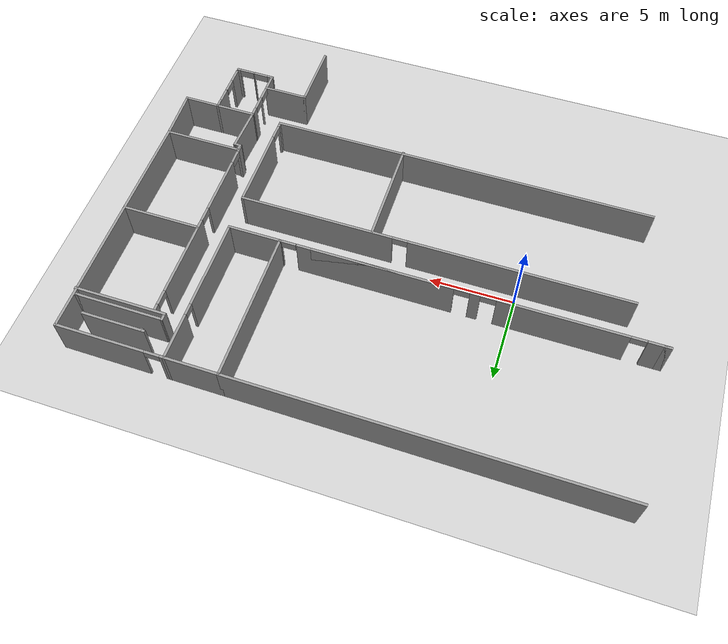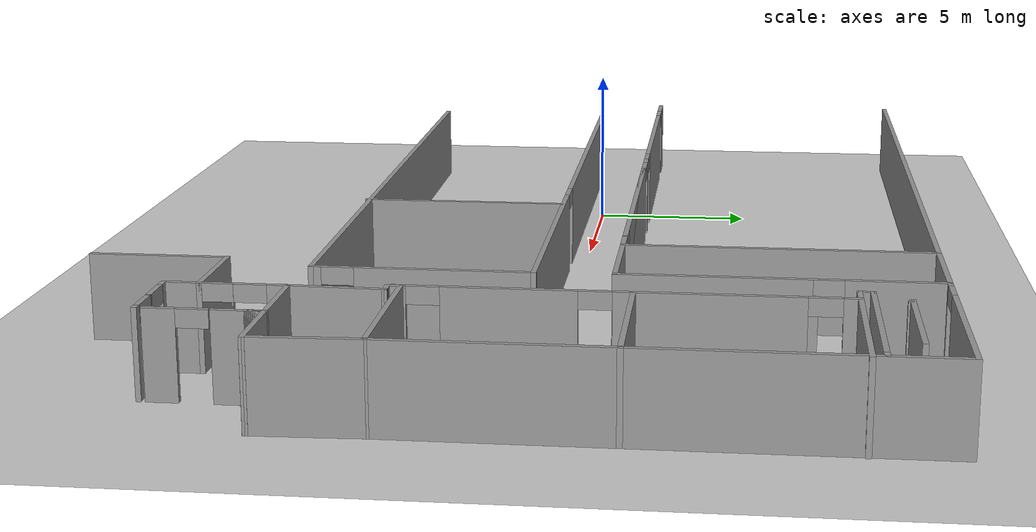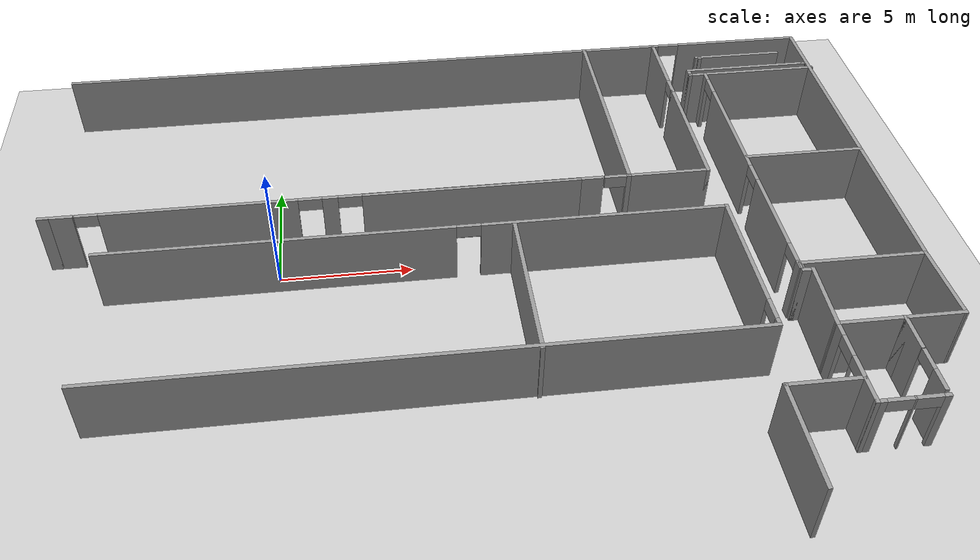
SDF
<sdf version="1.6">
 <world name="default">
  <model name="ground_plane">
   <static>1</static>
   <link name="link">
    <collision name="collision">
     <geometry><plane><normal>0 0 1</normal><size>100 100</size></plane></geometry>
     <surface><friction><ode><mu>100</mu><mu2>50</mu2></ode></friction></surface>
    </collision>
    <visual name="visual">
     <cast_shadows>0</cast_shadows>
     <geometry><plane><normal>0 0 1</normal><size>100 100</size></plane></geometry>
     <material>
      <script><uri>file://media/materials/scripts/gazebo.material</uri><name>Gazebo/Grey</name></script>
     </material>
    </visual>
   </link>
  </model>
  <model name="Devon1_test">
   <pose>0.002437 -1.27806 0 0 -0 0</pose>
   <link name="Wall_0">
    <collision name="Wall_0_Collision">
     <geometry><box><size>9 0.15 2.5</size></box></geometry>
     <pose>0 0 1.25 0 -0 0</pose>
    </collision>
    <visual name="Wall_0_Visual">
     <pose>0 0 1.25 0 -0 0</pose>
     <geometry><box><size>9 0.15 2.5</size></box></geometry>
     <material>
      <script><uri>file://media/materials/scripts/gazebo.material</uri><name>Gazebo/Grey</name></script>
      <ambient>1 1 1 1</ambient>
     </material>
    </visual>
    <pose>13.5343 7.35639 0 0 0 -1.5708</pose>
   </link>
   <link name="Wall_1">
    <collision name="Wall_1_Collision">
     <geometry><box><size>3.25 0.15 2.5</size></box></geometry>
     <pose>0 0 1.25 0 -0 0</pose>
    </collision>
    <visual name="Wall_1_Visual">
     <pose>0 0 1.25 0 -0 0</pose>
     <geometry><box><size>3.25 0.15 2.5</size></box></geometry>
     <material>
      <script><uri>file://media/materials/scripts/gazebo.material</uri><name>Gazebo/Grey</name></script>
      <ambient>1 1 1 1</ambient>
     </material>
    </visual>
    <pose>15.0843 2.93139 0 0 -0 0</pose>
   </link>
   <link name="Wall_103">
    <collision name="Wall_103_Collision">
     <geometry><box><size>2.25 0.15 2.5</size></box></geometry>
     <pose>0 0 1.25 0 -0 0</pose>
    </collision>
    <visual name="Wall_103_Visual">
     <pose>0 0 1.25 0 -0 0</pose>
     <geometry><box><size>2.25 0.15 2.5</size></box></geometry>
     <material>
      <script><uri>file://media/materials/scripts/gazebo.material</uri><name>Gazebo/Grey</name></script>
      <ambient>1 1 1 1</ambient>
     </material>
    </visual>
    <pose>22.0343 -5.51861 0 0 -0 0</pose>
   </link>
   <link name="Wall_104">
    <collision name="Wall_104_Collision">
     <geometry><box><size>3.10169 0.15 2.5</size></box></geometry>
     <pose>0 0 1.25 0 -0 0</pose>
    </collision>
    <visual name="Wall_104_Visual">
     <pose>0 0 1.25 0 -0 0</pose>
     <geometry><box><size>3.10169 0.15 2.5</size></box></geometry>
     <material>
      <script><uri>file://media/materials/scripts/gazebo.material</uri><name>Gazebo/Grey</name></script>
      <ambient>1 1 1 1</ambient>
     </material>
    </visual>
    <pose>23.0343 -4.04361 0 0 -0 1.60468</pose>
   </link>
   <link name="Wall_106">
    <collision name="Wall_106_Collision">
     <geometry><box><size>0.5 0.15 2.5</size></box></geometry>
     <pose>0 0 1.25 0 -0 0</pose>
    </collision>
    <visual name="Wall_106_Visual">
     <pose>0 0 1.25 0 -0 0</pose>
     <geometry><box><size>0.5 0.15 2.5</size></box></geometry>
     <material>
      <script><uri>file://media/materials/scripts/gazebo.material</uri><name>Gazebo/Grey</name></script>
      <ambient>1 1 1 1</ambient>
     </material>
    </visual>
    <pose>18.3843 -2.74361 0 0 0 -1.5708</pose>
   </link>
   <link name="Wall_107">
    <collision name="Wall_107_Collision">
     <geometry><box><size>0.5 0.15 2.5</size></box></geometry>
     <pose>0 0 1.25 0 -0 0</pose>
    </collision>
    <visual name="Wall_107_Visual">
     <pose>0 0 1.25 0 -0 0</pose>
     <geometry><box><size>0.5 0.15 2.5</size></box></geometry>
     <material>
      <script><uri>file://media/materials/scripts/gazebo.material</uri><name>Gazebo/Grey</name></script>
      <ambient>1 1 1 1</ambient>
     </material>
    </visual>
    <pose>18.5593 -2.91861 0 0 -0 0</pose>
   </link>
   <link name="Wall_108">
    <collision name="Wall_108_Collision">
     <geometry><box><size>2.75192 0.15 2.5</size></box></geometry>
     <pose>0 0 1.25 0 -0 0</pose>
    </collision>
    <visual name="Wall_108_Visual">
     <pose>0 0 1.25 0 -0 0</pose>
     <geometry><box><size>2.75192 0.15 2.5</size></box></geometry>
     <material>
      <script><uri>file://media/materials/scripts/gazebo.material</uri><name>Gazebo/Grey</name></script>
      <ambient>1 1 1 1</ambient>
     </material>
    </visual>
    <pose>18.6843 -4.21861 0 0 0 -1.60924</pose>
   </link>
   <link name="Wall_11">
    <pose>19.8093 11.7814 0 0 -0 0</pose>
    <visual name="Wall_11_Visual_0">
     <pose>-3.09331 0 1.25 0 -0 0</pose>
     <geometry><box><size>0.31338 0.15 2.5</size></box></geometry>
     <material>
      <script><uri>file://media/materials/scripts/gazebo.material</uri><name>Gazebo/Grey</name></script>
      <ambient>1 1 1 1</ambient>
     </material>
    </visual>
    <collision name="Wall_11_Collision_0">
     <geometry><box><size>0.31338 0.15 2.5</size></box></geometry>
     <pose>-3.09331 0 1.25 0 -0 0</pose>
    </collision>
    <visual name="Wall_11_Visual_1">
     <pose>0.60669 0 1.25 0 -0 0</pose>
     <geometry><box><size>5.28662 0.15 2.5</size></box></geometry>
     <material>
      <script><uri>file://media/materials/scripts/gazebo.material</uri><name>Gazebo/Grey</name></script>
      <ambient>1 1 1 1</ambient>
     </material>
    </visual>
    <collision name="Wall_11_Collision_1">
     <geometry><box><size>5.28662 0.15 2.5</size></box></geometry>
     <pose>0.60669 0 1.25 0 -0 0</pose>
    </collision>
    <visual name="Wall_11_Visual_2">
     <pose>-2.48662 0 2.25 0 -0 0</pose>
     <geometry><box><size>0.9 0.15 0.5</size></box></geometry>
     <material>
      <script><uri>file://media/materials/scripts/gazebo.material</uri><name>Gazebo/Grey</name></script>
      <ambient>1 1 1 1</ambient>
     </material>
    </visual>
    <collision name="Wall_11_Collision_2">
     <geometry><box><size>0.9 0.15 0.5</size></box></geometry>
     <pose>-2.48662 0 2.25 0 -0 0</pose>
    </collision>
   </link>
   <link name="Wall_111">
    <collision name="Wall_111_Collision">
     <geometry><box><size>23.25 0.15 2.5</size></box></geometry>
     <pose>0 0 1.25 0 -0 0</pose>
    </collision>
    <visual name="Wall_111_Visual">
     <pose>0 0 1.25 0 -0 0</pose>
     <geometry><box><size>23.25 0.15 2.5</size></box></geometry>
     <material>
      <script><uri>file://media/materials/scripts/gazebo.material</uri><name>Gazebo/Grey</name></script>
      <ambient>1 1 1 1</ambient>
     </material>
    </visual>
    <pose>5.16552 -5.35326 0 0 -0 0</pose>
   </link>
   <link name="Wall_112">
    <pose>16.7155 -2.30326 0 0 -0 1.5708</pose>
    <visual name="Wall_112_Visual_0">
     <pose>-2.94471 0 1.25 0 -0 0</pose>
     <geometry><box><size>0.360572 0.15 2.5</size></box></geometry>
     <material>
      <script><uri>file://media/materials/scripts/gazebo.material</uri><name>Gazebo/Grey</name></script>
      <ambient>1 1 1 1</ambient>
     </material>
    </visual>
    <collision name="Wall_112_Collision_0">
     <geometry><box><size>0.360572 0.15 2.5</size></box></geometry>
     <pose>-2.94471 0 1.25 0 -0 0</pose>
    </collision>
    <visual name="Wall_112_Visual_1">
     <pose>0.630286 0 1.25 0 -0 0</pose>
     <geometry><box><size>4.98943 0.15 2.5</size></box></geometry>
     <material>
      <script><uri>file://media/materials/scripts/gazebo.material</uri><name>Gazebo/Grey</name></script>
      <ambient>1 1 1 1</ambient>
     </material>
    </visual>
    <collision name="Wall_112_Collision_1">
     <geometry><box><size>4.98943 0.15 2.5</size></box></geometry>
     <pose>0.630286 0 1.25 0 -0 0</pose>
    </collision>
    <visual name="Wall_112_Visual_2">
     <pose>-2.31443 0 2.25 0 -0 0</pose>
     <geometry><box><size>0.9 0.15 0.5</size></box></geometry>
     <material>
      <script><uri>file://media/materials/scripts/gazebo.material</uri><name>Gazebo/Grey</name></script>
      <ambient>1 1 1 1</ambient>
     </material>
    </visual>
    <collision name="Wall_112_Collision_2">
     <geometry><box><size>0.9 0.15 0.5</size></box></geometry>
     <pose>-2.31443 0 2.25 0 -0 0</pose>
    </collision>
   </link>
   <link name="Wall_113">
    <pose>5.16552 0.74674 0 0 -0 3.14159</pose>
    <visual name="Wall_113_Visual_0">
     <pose>-6.98964 0 1.25 0 -0 0</pose>
     <geometry><box><size>9.27072 0.15 2.5</size></box></geometry>
     <material>
      <script><uri>file://media/materials/scripts/gazebo.material</uri><name>Gazebo/Grey</name></script>
      <ambient>1 1 1 1</ambient>
     </material>
    </visual>
    <collision name="Wall_113_Collision_0">
     <geometry><box><size>9.27072 0.15 2.5</size></box></geometry>
     <pose>-6.98964 0 1.25 0 -0 0</pose>
    </collision>
    <visual name="Wall_113_Visual_1">
     <pose>5.08536 0 1.25 0 -0 0</pose>
     <geometry><box><size>13.0793 0.15 2.5</size></box></geometry>
     <material>
      <script><uri>file://media/materials/scripts/gazebo.material</uri><name>Gazebo/Grey</name></script>
      <ambient>1 1 1 1</ambient>
     </material>
    </visual>
    <collision name="Wall_113_Collision_1">
     <geometry><box><size>13.0793 0.15 2.5</size></box></geometry>
     <pose>5.08536 0 1.25 0 -0 0</pose>
    </collision>
    <visual name="Wall_113_Visual_2">
     <pose>-1.90428 0 2.25 0 -0 0</pose>
     <geometry><box><size>0.9 0.15 0.5</size></box></geometry>
     <material>
      <script><uri>file://media/materials/scripts/gazebo.material</uri><name>Gazebo/Grey</name></script>
      <ambient>1 1 1 1</ambient>
     </material>
    </visual>
    <collision name="Wall_113_Collision_2">
     <geometry><box><size>0.9 0.15 0.5</size></box></geometry>
     <pose>-1.90428 0 2.25 0 -0 0</pose>
    </collision>
   </link>
   <link name="Wall_115">
    <collision name="Wall_115_Collision">
     <geometry><box><size>6.25 0.15 2.5</size></box></geometry>
     <pose>0 0 1.25 0 -0 0</pose>
    </collision>
    <visual name="Wall_115_Visual">
     <pose>0 0 1.25 0 -0 0</pose>
     <geometry><box><size>6.25 0.15 2.5</size></box></geometry>
     <material>
      <script><uri>file://media/materials/scripts/gazebo.material</uri><name>Gazebo/Grey</name></script>
      <ambient>1 1 1 1</ambient>
     </material>
    </visual>
    <pose>8.74958 -2.37463 0 0 0 -1.5708</pose>
   </link>
   <link name="Wall_12">
    <collision name="Wall_12_Collision">
     <geometry><box><size>14.5 0.15 2.5</size></box></geometry>
     <pose>0 0 1.25 0 -0 0</pose>
    </collision>
    <visual name="Wall_12_Visual">
     <pose>0 0 1.25 0 -0 0</pose>
     <geometry><box><size>14.5 0.15 2.5</size></box></geometry>
     <material>
      <script><uri>file://media/materials/scripts/gazebo.material</uri><name>Gazebo/Grey</name></script>
      <ambient>1 1 1 1</ambient>
     </material>
    </visual>
    <pose>22.9843 4.60639 0 0 0 -1.5708</pose>
   </link>
   <link name="Wall_13">
    <collision name="Wall_13_Collision">
     <geometry><box><size>4.75 0.15 2.5</size></box></geometry>
     <pose>0 0 1.25 0 -0 0</pose>
    </collision>
    <visual name="Wall_13_Visual">
     <pose>0 0 1.25 0 -0 0</pose>
     <geometry><box><size>4.75 0.15 2.5</size></box></geometry>
     <material>
      <script><uri>file://media/materials/scripts/gazebo.material</uri><name>Gazebo/Grey</name></script>
      <ambient>1 1 1 1</ambient>
     </material>
    </visual>
    <pose>20.6843 -2.56861 0 0 -0 3.14159</pose>
   </link>
   <link name="Wall_16">
    <collision name="Wall_16_Collision">
     <geometry><box><size>5.5 0.15 2.5</size></box></geometry>
     <pose>0 0 1.25 0 -0 0</pose>
    </collision>
    <visual name="Wall_16_Visual">
     <pose>0 0 1.25 0 -0 0</pose>
     <geometry><box><size>5.5 0.15 2.5</size></box></geometry>
     <material>
      <script><uri>file://media/materials/scripts/gazebo.material</uri><name>Gazebo/Grey</name></script>
      <ambient>1 1 1 1</ambient>
     </material>
    </visual>
    <pose>20.3729 9.36477 0 0 -0 3.14159</pose>
   </link>
   <link name="Wall_17">
    <collision name="Wall_17_Collision">
     <geometry><box><size>0.5 0.15 2.5</size></box></geometry>
     <pose>0 0 1.25 0 -0 0</pose>
    </collision>
    <visual name="Wall_17_Visual">
     <pose>0 0 1.25 0 -0 0</pose>
     <geometry><box><size>0.5 0.15 2.5</size></box></geometry>
     <material>
      <script><uri>file://media/materials/scripts/gazebo.material</uri><name>Gazebo/Grey</name></script>
      <ambient>1 1 1 1</ambient>
     </material>
    </visual>
    <pose>17.6979 9.53976 0 0 -0 1.5708</pose>
   </link>
   <link name="Wall_18">
    <collision name="Wall_18_Collision">
     <geometry><box><size>5.25 0.15 2.5</size></box></geometry>
     <pose>0 0 1.25 0 -0 0</pose>
    </collision>
    <visual name="Wall_18_Visual">
     <pose>0 0 1.25 0 -0 0</pose>
     <geometry><box><size>5.25 0.15 2.5</size></box></geometry>
     <material>
      <script><uri>file://media/materials/scripts/gazebo.material</uri><name>Gazebo/Grey</name></script>
      <ambient>1 1 1 1</ambient>
     </material>
    </visual>
    <pose>20.2479 9.71476 0 0 -0 0</pose>
   </link>
   <link name="Wall_19">
    <collision name="Wall_19_Collision">
     <geometry><box><size>0.25 0.15 2.5</size></box></geometry>
     <pose>0 0 1.25 0 -0 0</pose>
    </collision>
    <visual name="Wall_19_Visual">
     <pose>0 0 1.25 0 -0 0</pose>
     <geometry><box><size>0.25 0.15 2.5</size></box></geometry>
     <material>
      <script><uri>file://media/materials/scripts/gazebo.material</uri><name>Gazebo/Grey</name></script>
      <ambient>1 1 1 1</ambient>
     </material>
    </visual>
    <pose>22.8479 9.71476 0 0 -0 0</pose>
   </link>
   <link name="Wall_196">
    <collision name="Wall_196_Collision">
     <geometry><box><size>2.75 0.15 2.5</size></box></geometry>
     <pose>0 0 1.25 0 -0 0</pose>
    </collision>
    <visual name="Wall_196_Visual">
     <pose>0 0 1.25 0 -0 0</pose>
     <geometry><box><size>2.75 0.15 2.5</size></box></geometry>
     <material>
      <script><uri>file://media/materials/scripts/gazebo.material</uri><name>Gazebo/Grey</name></script>
      <ambient>1 1 1 1</ambient>
     </material>
    </visual>
    <pose>17.3343 -7.89072 0 0 -0 0</pose>
   </link>
   <link name="Wall_198">
    <collision name="Wall_198_Collision">
     <geometry><box><size>4.75 0.15 2.5</size></box></geometry>
     <pose>0 0 1.25 0 -0 0</pose>
    </collision>
    <visual name="Wall_198_Visual">
     <pose>0 0 1.25 0 -0 0</pose>
     <geometry><box><size>4.75 0.15 2.5</size></box></geometry>
     <material>
      <script><uri>file://media/materials/scripts/gazebo.material</uri><name>Gazebo/Grey</name></script>
      <ambient>1 1 1 1</ambient>
     </material>
    </visual>
    <pose>20.6843 3.53139 0 0 -0 0</pose>
   </link>
   <link name="Wall_2">
    <collision name="Wall_2_Collision">
     <geometry><box><size>5.5 0.15 2.5</size></box></geometry>
     <pose>0 0 1.25 0 -0 0</pose>
    </collision>
    <visual name="Wall_2_Visual">
     <pose>0 0 1.25 0 -0 0</pose>
     <geometry><box><size>5.5 0.15 2.5</size></box></geometry>
     <material>
      <script><uri>file://media/materials/scripts/gazebo.material</uri><name>Gazebo/Grey</name></script>
      <ambient>1 1 1 1</ambient>
     </material>
    </visual>
    <pose>16.6343 5.60639 0 0 -0 1.5708</pose>
   </link>
   <link name="Wall_21">
    <pose>18.337 3.28417 0 0 0 -1.5708</pose>
    <visual name="Wall_21_Visual_0">
     <pose>-5.88599 0 1.25 0 -0 0</pose>
     <geometry><box><size>0.478012 0.15 2.5</size></box></geometry>
     <material>
      <script><uri>file://media/materials/scripts/gazebo.material</uri><name>Gazebo/Grey</name></script>
      <ambient>1 1 1 1</ambient>
     </material>
    </visual>
    <collision name="Wall_21_Collision_0">
     <geometry><box><size>0.478012 0.15 2.5</size></box></geometry>
     <pose>-5.88599 0 1.25 0 -0 0</pose>
    </collision>
    <visual name="Wall_21_Visual_1">
     <pose>-2.23008 0 1.25 0 -0 0</pose>
     <geometry><box><size>5.03382 0.15 2.5</size></box></geometry>
     <material>
      <script><uri>file://media/materials/scripts/gazebo.material</uri><name>Gazebo/Grey</name></script>
      <ambient>1 1 1 1</ambient>
     </material>
    </visual>
    <collision name="Wall_21_Collision_1">
     <geometry><box><size>5.03382 0.15 2.5</size></box></geometry>
     <pose>-2.23008 0 1.25 0 -0 0</pose>
    </collision>
    <visual name="Wall_21_Visual_2">
     <pose>3.00258 0 1.25 0 -0 0</pose>
     <geometry><box><size>3.6315 0.15 2.5</size></box></geometry>
     <material>
      <script><uri>file://media/materials/scripts/gazebo.material</uri><name>Gazebo/Grey</name></script>
      <ambient>1 1 1 1</ambient>
     </material>
    </visual>
    <collision name="Wall_21_Collision_2">
     <geometry><box><size>3.6315 0.15 2.5</size></box></geometry>
     <pose>3.00258 0 1.25 0 -0 0</pose>
    </collision>
    <visual name="Wall_21_Visual_3">
     <pose>5.92167 0 1.25 0 -0 0</pose>
     <geometry><box><size>0.406666 0.15 2.5</size></box></geometry>
     <material>
      <script><uri>file://media/materials/scripts/gazebo.material</uri><name>Gazebo/Grey</name></script>
      <ambient>1 1 1 1</ambient>
     </material>
    </visual>
    <collision name="Wall_21_Collision_3">
     <geometry><box><size>0.406666 0.15 2.5</size></box></geometry>
     <pose>5.92167 0 1.25 0 -0 0</pose>
    </collision>
    <visual name="Wall_21_Visual_4">
     <pose>-5.19699 0 2.25 0 -0 0</pose>
     <geometry><box><size>0.9 0.15 0.5</size></box></geometry>
     <material>
      <script><uri>file://media/materials/scripts/gazebo.material</uri><name>Gazebo/Grey</name></script>
      <ambient>1 1 1 1</ambient>
     </material>
    </visual>
    <collision name="Wall_21_Collision_4">
     <geometry><box><size>0.9 0.15 0.5</size></box></geometry>
     <pose>-5.19699 0 2.25 0 -0 0</pose>
    </collision>
    <visual name="Wall_21_Visual_5">
     <pose>0.736835 0 2.25 0 -0 0</pose>
     <geometry><box><size>0.9 0.15 0.5</size></box></geometry>
     <material>
      <script><uri>file://media/materials/scripts/gazebo.material</uri><name>Gazebo/Grey</name></script>
      <ambient>1 1 1 1</ambient>
     </material>
    </visual>
    <collision name="Wall_21_Collision_5">
     <geometry><box><size>0.9 0.15 0.5</size></box></geometry>
     <pose>0.736835 0 2.25 0 -0 0</pose>
    </collision>
    <visual name="Wall_21_Visual_6">
     <pose>5.26833 0 2.25 0 -0 0</pose>
     <geometry><box><size>0.9 0.15 0.5</size></box></geometry>
     <material>
      <script><uri>file://media/materials/scripts/gazebo.material</uri><name>Gazebo/Grey</name></script>
      <ambient>1 1 1 1</ambient>
     </material>
    </visual>
    <collision name="Wall_21_Collision_6">
     <geometry><box><size>0.9 0.15 0.5</size></box></geometry>
     <pose>5.26833 0 2.25 0 -0 0</pose>
    </collision>
   </link>
   <link name="Wall_213">
    <collision name="Wall_213_Collision">
     <geometry><box><size>0.15 0.15 2.5</size></box></geometry>
     <pose>0 0 1.25 0 -0 0</pose>
    </collision>
    <visual name="Wall_213_Visual">
     <pose>0 0 1.25 0 -0 0</pose>
     <geometry><box><size>0.15 0.15 2.5</size></box></geometry>
     <material>
      <script><uri>file://media/materials/scripts/gazebo.material</uri><name>Gazebo/Grey</name></script>
      <ambient>1 1 1 1</ambient>
     </material>
    </visual>
    <pose>18.4465 10.6183 0 0 -0 0</pose>
   </link>
   <link name="Wall_215">
    <collision name="Wall_215_Collision">
     <geometry><box><size>3.75 0.15 2.5</size></box></geometry>
     <pose>0 0 1.25 0 -0 0</pose>
    </collision>
    <visual name="Wall_215_Visual">
     <pose>0 0 1.25 0 -0 0</pose>
     <geometry><box><size>3.75 0.15 2.5</size></box></geometry>
     <material>
      <script><uri>file://media/materials/scripts/gazebo.material</uri><name>Gazebo/Grey</name></script>
      <ambient>1 1 1 1</ambient>
     </material>
    </visual>
    <pose>20.1256 10.6712 0 0 -0 3.14159</pose>
   </link>
   <link name="Wall_23">
    <pose>2.48431 2.93139 0 0 -0 3.14159</pose>
    <visual name="Wall_23_Visual_0">
     <pose>-11.0308 0 1.25 0 -0 0</pose>
     <geometry><box><size>0.188464 0.15 2.5</size></box></geometry>
     <material>
      <script><uri>file://media/materials/scripts/gazebo.material</uri><name>Gazebo/Grey</name></script>
      <ambient>1 1 1 1</ambient>
     </material>
    </visual>
    <collision name="Wall_23_Collision_0">
     <geometry><box><size>0.188464 0.15 2.5</size></box></geometry>
     <pose>-11.0308 0 1.25 0 -0 0</pose>
    </collision>
    <visual name="Wall_23_Visual_1">
     <pose>-5.41847 0 1.25 0 -0 0</pose>
     <geometry><box><size>9.23614 0.15 2.5</size></box></geometry>
     <material>
      <script><uri>file://media/materials/scripts/gazebo.material</uri><name>Gazebo/Grey</name></script>
      <ambient>1 1 1 1</ambient>
     </material>
    </visual>
    <collision name="Wall_23_Collision_1">
     <geometry><box><size>9.23614 0.15 2.5</size></box></geometry>
     <pose>-5.41847 0 1.25 0 -0 0</pose>
    </collision>
    <visual name="Wall_23_Visual_2">
     <pose>-4.99147 0 1.25 0 -0 0</pose>
     <geometry><box><size>8.38216 0.15 2.5</size></box></geometry>
     <material>
      <script><uri>file://media/materials/scripts/gazebo.material</uri><name>Gazebo/Grey</name></script>
      <ambient>1 1 1 1</ambient>
     </material>
    </visual>
    <collision name="Wall_23_Collision_2">
     <geometry><box><size>8.38216 0.15 2.5</size></box></geometry>
     <pose>-4.99147 0 1.25 0 -0 0</pose>
    </collision>
    <visual name="Wall_23_Visual_3">
     <pose>0.396804 0 1.25 0 -0 0</pose>
     <geometry><box><size>0.594397 0.15 2.5</size></box></geometry>
     <material>
      <script><uri>file://media/materials/scripts/gazebo.material</uri><name>Gazebo/Grey</name></script>
      <ambient>1 1 1 1</ambient>
     </material>
    </visual>
    <collision name="Wall_23_Collision_3">
     <geometry><box><size>0.594397 0.15 2.5</size></box></geometry>
     <pose>0.396804 0 1.25 0 -0 0</pose>
    </collision>
    <visual name="Wall_23_Visual_4">
     <pose>5.25668 0 1.25 0 -0 0</pose>
     <geometry><box><size>7.32535 0.15 2.5</size></box></geometry>
     <material>
      <script><uri>file://media/materials/scripts/gazebo.material</uri><name>Gazebo/Grey</name></script>
      <ambient>1 1 1 1</ambient>
     </material>
    </visual>
    <collision name="Wall_23_Collision_4">
     <geometry><box><size>7.32535 0.15 2.5</size></box></geometry>
     <pose>5.25668 0 1.25 0 -0 0</pose>
    </collision>
    <visual name="Wall_23_Visual_5">
     <pose>10.4722 0 1.25 0 -0 0</pose>
     <geometry><box><size>1.30565 0.15 2.5</size></box></geometry>
     <material>
      <script><uri>file://media/materials/scripts/gazebo.material</uri><name>Gazebo/Grey</name></script>
      <ambient>1 1 1 1</ambient>
     </material>
    </visual>
    <collision name="Wall_23_Collision_5">
     <geometry><box><size>1.30565 0.15 2.5</size></box></geometry>
     <pose>10.4722 0 1.25 0 -0 0</pose>
    </collision>
    <visual name="Wall_23_Visual_6">
     <pose>10.9017 0 1.25 0 -0 0</pose>
     <geometry><box><size>0.446637 0.15 2.5</size></box></geometry>
     <material>
      <script><uri>file://media/materials/scripts/gazebo.material</uri><name>Gazebo/Grey</name></script>
      <ambient>1 1 1 1</ambient>
     </material>
    </visual>
    <collision name="Wall_23_Collision_6">
     <geometry><box><size>0.446637 0.15 2.5</size></box></geometry>
     <pose>10.9017 0 1.25 0 -0 0</pose>
    </collision>
    <visual name="Wall_23_Visual_7">
     <pose>-10.5095 0 2.25 0 -0 0</pose>
     <geometry><box><size>0.853982 0.15 0.5</size></box></geometry>
     <material>
      <script><uri>file://media/materials/scripts/gazebo.material</uri><name>Gazebo/Grey</name></script>
      <ambient>1 1 1 1</ambient>
     </material>
    </visual>
    <collision name="Wall_23_Collision_7">
     <geometry><box><size>0.853982 0.15 0.5</size></box></geometry>
     <pose>-10.5095 0 2.25 0 -0 0</pose>
    </collision>
    <visual name="Wall_23_Visual_8">
     <pose>-0.350394 0 2.25 0 -0 0</pose>
     <geometry><box><size>0.9 0.15 0.5</size></box></geometry>
     <material>
      <script><uri>file://media/materials/scripts/gazebo.material</uri><name>Gazebo/Grey</name></script>
      <ambient>1 1 1 1</ambient>
     </material>
    </visual>
    <collision name="Wall_23_Collision_8">
     <geometry><box><size>0.9 0.15 0.5</size></box></geometry>
     <pose>-0.350394 0 2.25 0 -0 0</pose>
    </collision>
    <visual name="Wall_23_Visual_9">
     <pose>-0.350394 0 2.25 0 -0 0</pose>
     <geometry><box><size>0.9 0.15 0.5</size></box></geometry>
     <material>
      <script><uri>file://media/materials/scripts/gazebo.material</uri><name>Gazebo/Grey</name></script>
      <ambient>1 1 1 1</ambient>
     </material>
    </visual>
    <collision name="Wall_23_Collision_9">
     <geometry><box><size>0.9 0.15 0.5</size></box></geometry>
     <pose>-0.350394 0 2.25 0 -0 0</pose>
    </collision>
    <visual name="Wall_23_Visual_10">
     <pose>1.144 0 2.25 0 -0 0</pose>
     <geometry><box><size>0.9 0.15 0.5</size></box></geometry>
     <material>
      <script><uri>file://media/materials/scripts/gazebo.material</uri><name>Gazebo/Grey</name></script>
      <ambient>1 1 1 1</ambient>
     </material>
    </visual>
    <collision name="Wall_23_Collision_10">
     <geometry><box><size>0.9 0.15 0.5</size></box></geometry>
     <pose>1.144 0 2.25 0 -0 0</pose>
    </collision>
    <visual name="Wall_23_Visual_11">
     <pose>9.34886 0 2.25 0 -0 0</pose>
     <geometry><box><size>0.859011 0.15 0.5</size></box></geometry>
     <material>
      <script><uri>file://media/materials/scripts/gazebo.material</uri><name>Gazebo/Grey</name></script>
      <ambient>1 1 1 1</ambient>
     </material>
    </visual>
    <collision name="Wall_23_Collision_11">
     <geometry><box><size>0.859011 0.15 0.5</size></box></geometry>
     <pose>9.34886 0 2.25 0 -0 0</pose>
    </collision>
   </link>
   <link name="Wall_25">
    <collision name="Wall_25_Collision">
     <geometry><box><size>22.25 0.15 2.5</size></box></geometry>
     <pose>0 0 1.25 0 -0 0</pose>
    </collision>
    <visual name="Wall_25_Visual">
     <pose>0 0 1.25 0 -0 0</pose>
     <geometry><box><size>22.25 0.15 2.5</size></box></geometry>
     <material>
      <script><uri>file://media/materials/scripts/gazebo.material</uri><name>Gazebo/Grey</name></script>
      <ambient>1 1 1 1</ambient>
     </material>
    </visual>
    <pose>2.48431 11.7814 0 0 -0 0</pose>
   </link>
   <link name="Wall_4">
    <collision name="Wall_4_Collision">
     <geometry><box><size>3.25 0.15 2.5</size></box></geometry>
     <pose>0 0 1.25 0 -0 0</pose>
    </collision>
    <visual name="Wall_4_Visual">
     <pose>0 0 1.25 0 -0 0</pose>
     <geometry><box><size>3.25 0.15 2.5</size></box></geometry>
     <material>
      <script><uri>file://media/materials/scripts/gazebo.material</uri><name>Gazebo/Grey</name></script>
      <ambient>1 1 1 1</ambient>
     </material>
    </visual>
    <pose>15.0843 11.7814 0 0 -0 0</pose>
   </link>
   <link name="Wall_5">
    <pose>16.6343 10.0314 0 0 0 -1.5708</pose>
    <visual name="Wall_5_Visual_0">
     <pose>-0.417468 0 1.25 0 -0 0</pose>
     <geometry><box><size>2.81507 0.15 2.5</size></box></geometry>
     <material>
      <script><uri>file://media/materials/scripts/gazebo.material</uri><name>Gazebo/Grey</name></script>
      <ambient>1 1 1 1</ambient>
     </material>
    </visual>
    <collision name="Wall_5_Collision_0">
     <geometry><box><size>2.81507 0.15 2.5</size></box></geometry>
     <pose>-0.417468 0 1.25 0 -0 0</pose>
    </collision>
    <visual name="Wall_5_Visual_1">
     <pose>1.40753 0 2.25 0 -0 0</pose>
     <geometry><box><size>0.834935 0.15 0.5</size></box></geometry>
     <material>
      <script><uri>file://media/materials/scripts/gazebo.material</uri><name>Gazebo/Grey</name></script>
      <ambient>1 1 1 1</ambient>
     </material>
    </visual>
    <collision name="Wall_5_Collision_1">
     <geometry><box><size>0.834935 0.15 0.5</size></box></geometry>
     <pose>1.40753 0 2.25 0 -0 0</pose>
    </collision>
   </link>
   <link name="Wall_88">
    <collision name="Wall_88_Collision">
     <geometry><box><size>4 0.15 2.5</size></box></geometry>
     <pose>0 0 1.25 0 -0 0</pose>
    </collision>
    <visual name="Wall_88_Visual">
     <pose>0 0 1.25 0 -0 0</pose>
     <geometry><box><size>4 0.15 2.5</size></box></geometry>
     <material>
      <script><uri>file://media/materials/scripts/gazebo.material</uri><name>Gazebo/Grey</name></script>
      <ambient>1 1 1 1</ambient>
     </material>
    </visual>
    <pose>16.0343 -9.81572 0 0 -0 1.5708</pose>
   </link>
   <link name="Wall_92">
    <pose>20.9843 -7.06861 0 0 -0 1.5708</pose>
    <visual name="Wall_92_Visual_0">
     <pose>-1.18273 0 1.25 0 -0 0</pose>
     <geometry><box><size>0.884551 0.15 2.5</size></box></geometry>
     <material>
      <script><uri>file://media/materials/scripts/gazebo.material</uri><name>Gazebo/Grey</name></script>
      <ambient>1 1 1 1</ambient>
     </material>
    </visual>
    <collision name="Wall_92_Collision_0">
     <geometry><box><size>0.884551 0.15 2.5</size></box></geometry>
     <pose>-1.18273 0 1.25 0 -0 0</pose>
    </collision>
    <visual name="Wall_92_Visual_1">
     <pose>0.892275 0 1.25 0 -0 0</pose>
     <geometry><box><size>1.46545 0.15 2.5</size></box></geometry>
     <material>
      <script><uri>file://media/materials/scripts/gazebo.material</uri><name>Gazebo/Grey</name></script>
      <ambient>1 1 1 1</ambient>
     </material>
    </visual>
    <collision name="Wall_92_Collision_1">
     <geometry><box><size>1.46545 0.15 2.5</size></box></geometry>
     <pose>0.892275 0 1.25 0 -0 0</pose>
    </collision>
    <visual name="Wall_92_Visual_2">
     <pose>1.32743 0 1.25 0 -0 0</pose>
     <geometry><box><size>0.595143 0.15 2.5</size></box></geometry>
     <material>
      <script><uri>file://media/materials/scripts/gazebo.material</uri><name>Gazebo/Grey</name></script>
      <ambient>1 1 1 1</ambient>
     </material>
    </visual>
    <collision name="Wall_92_Collision_2">
     <geometry><box><size>0.595143 0.15 2.5</size></box></geometry>
     <pose>1.32743 0 1.25 0 -0 0</pose>
    </collision>
    <visual name="Wall_92_Visual_3">
     <pose>-0.305296 0 2.25 0 -0 0</pose>
     <geometry><box><size>0.870306 0.15 0.5</size></box></geometry>
     <material>
      <script><uri>file://media/materials/scripts/gazebo.material</uri><name>Gazebo/Grey</name></script>
      <ambient>1 1 1 1</ambient>
     </material>
    </visual>
    <collision name="Wall_92_Collision_3">
     <geometry><box><size>0.870306 0.15 0.5</size></box></geometry>
     <pose>-0.305296 0 2.25 0 -0 0</pose>
    </collision>
   </link>
   <link name="Wall_97">
    <collision name="Wall_97_Collision">
     <geometry><box><size>2.5 0.15 2.5</size></box></geometry>
     <pose>0 0 1.25 0 -0 0</pose>
    </collision>
    <visual name="Wall_97_Visual">
     <pose>0 0 1.25 0 -0 0</pose>
     <geometry><box><size>2.5 0.15 2.5</size></box></geometry>
     <material>
      <script><uri>file://media/materials/scripts/gazebo.material</uri><name>Gazebo/Grey</name></script>
      <ambient>1 1 1 1</ambient>
     </material>
    </visual>
    <pose>19.8093 -5.51861 0 0 -0 3.14159</pose>
   </link>
   <link name="Wall_98">
    <pose>18.6343 -7.19361 0 0 0 -1.5708</pose>
    <visual name="Wall_98_Visual_0">
     <pose>-1.43631 0 1.25 0 -0 0</pose>
     <geometry><box><size>0.627376 0.15 2.5</size></box></geometry>
     <material>
      <script><uri>file://media/materials/scripts/gazebo.material</uri><name>Gazebo/Grey</name></script>
      <ambient>1 1 1 1</ambient>
     </material>
    </visual>
    <collision name="Wall_98_Collision_0">
     <geometry><box><size>0.627376 0.15 2.5</size></box></geometry>
     <pose>-1.43631 0 1.25 0 -0 0</pose>
    </collision>
    <visual name="Wall_98_Visual_1">
     <pose>-0.221354 0 1.25 0 -0 0</pose>
     <geometry><box><size>0.00254 0.15 2.5</size></box></geometry>
     <material>
      <script><uri>file://media/materials/scripts/gazebo.material</uri><name>Gazebo/Grey</name></script>
      <ambient>1 1 1 1</ambient>
     </material>
    </visual>
    <collision name="Wall_98_Collision_1">
     <geometry><box><size>0.00254 0.15 2.5</size></box></geometry>
     <pose>-0.221354 0 1.25 0 -0 0</pose>
    </collision>
    <visual name="Wall_98_Visual_2">
     <pose>1.21496 0 1.25 0 -0 0</pose>
     <geometry><box><size>1.07008 0.15 2.5</size></box></geometry>
     <material>
      <script><uri>file://media/materials/scripts/gazebo.material</uri><name>Gazebo/Grey</name></script>
      <ambient>1 1 1 1</ambient>
     </material>
    </visual>
    <collision name="Wall_98_Collision_2">
     <geometry><box><size>1.07008 0.15 2.5</size></box></geometry>
     <pose>1.21496 0 1.25 0 -0 0</pose>
    </collision>
    <visual name="Wall_98_Visual_3">
     <pose>-0.672624 0 2.25 0 -0 0</pose>
     <geometry><box><size>0.9 0.15 0.5</size></box></geometry>
     <material>
      <script><uri>file://media/materials/scripts/gazebo.material</uri><name>Gazebo/Grey</name></script>
      <ambient>1 1 1 1</ambient>
     </material>
    </visual>
    <collision name="Wall_98_Collision_3">
     <geometry><box><size>0.9 0.15 0.5</size></box></geometry>
     <pose>-0.672624 0 2.25 0 -0 0</pose>
    </collision>
    <visual name="Wall_98_Visual_4">
     <pose>0.229917 0 2.25 0 -0 0</pose>
     <geometry><box><size>0.9 0.15 0.5</size></box></geometry>
     <material>
      <script><uri>file://media/materials/scripts/gazebo.material</uri><name>Gazebo/Grey</name></script>
      <ambient>1 1 1 1</ambient>
     </material>
    </visual>
    <collision name="Wall_98_Collision_4">
     <geometry><box><size>0.9 0.15 0.5</size></box></geometry>
     <pose>0.229917 0 2.25 0 -0 0</pose>
    </collision>
   </link>
   <link name="Wall_99">
    <pose>19.8093 -8.86861 0 0 -0 0</pose>
    <visual name="Wall_99_Visual_0">
     <pose>-1.05556 0 1.25 0 -0 0</pose>
     <geometry><box><size>0.38889 0.15 2.5</size></box></geometry>
     <material>
      <script><uri>file://media/materials/scripts/gazebo.material</uri><name>Gazebo/Grey</name></script>
      <ambient>1 1 1 1</ambient>
     </material>
    </visual>
    <collision name="Wall_99_Collision_0">
     <geometry><box><size>0.38889 0.15 2.5</size></box></geometry>
     <pose>-1.05556 0 1.25 0 -0 0</pose>
    </collision>
    <visual name="Wall_99_Visual_1">
     <pose>0.067986 0 1.25 0 -0 0</pose>
     <geometry><box><size>0.058191 0.15 2.5</size></box></geometry>
     <material>
      <script><uri>file://media/materials/scripts/gazebo.material</uri><name>Gazebo/Grey</name></script>
      <ambient>1 1 1 1</ambient>
     </material>
    </visual>
    <collision name="Wall_99_Collision_1">
     <geometry><box><size>0.058191 0.15 2.5</size></box></geometry>
     <pose>0.067986 0 1.25 0 -0 0</pose>
    </collision>
    <visual name="Wall_99_Visual_2">
     <pose>1.12354 0 1.25 0 -0 0</pose>
     <geometry><box><size>0.252919 0.15 2.5</size></box></geometry>
     <material>
      <script><uri>file://media/materials/scripts/gazebo.material</uri><name>Gazebo/Grey</name></script>
      <ambient>1 1 1 1</ambient>
     </material>
    </visual>
    <collision name="Wall_99_Collision_2">
     <geometry><box><size>0.252919 0.15 2.5</size></box></geometry>
     <pose>1.12354 0 1.25 0 -0 0</pose>
    </collision>
    <visual name="Wall_99_Visual_3">
     <pose>-0.41111 0 2.25 0 -0 0</pose>
     <geometry><box><size>0.9 0.15 0.5</size></box></geometry>
     <material>
      <script><uri>file://media/materials/scripts/gazebo.material</uri><name>Gazebo/Grey</name></script>
      <ambient>1 1 1 1</ambient>
     </material>
    </visual>
    <collision name="Wall_99_Collision_3">
     <geometry><box><size>0.9 0.15 0.5</size></box></geometry>
     <pose>-0.41111 0 2.25 0 -0 0</pose>
    </collision>
    <visual name="Wall_99_Visual_4">
     <pose>0.547081 0 2.25 0 -0 0</pose>
     <geometry><box><size>0.9 0.15 0.5</size></box></geometry>
     <material>
      <script><uri>file://media/materials/scripts/gazebo.material</uri><name>Gazebo/Grey</name></script>
      <ambient>1 1 1 1</ambient>
     </material>
    </visual>
    <collision name="Wall_99_Collision_4">
     <geometry><box><size>0.9 0.15 0.5</size></box></geometry>
     <pose>0.547081 0 2.25 0 -0 0</pose>
    </collision>
   </link>
   <static>1</static>
  </model>
 </world>
</sdf>
